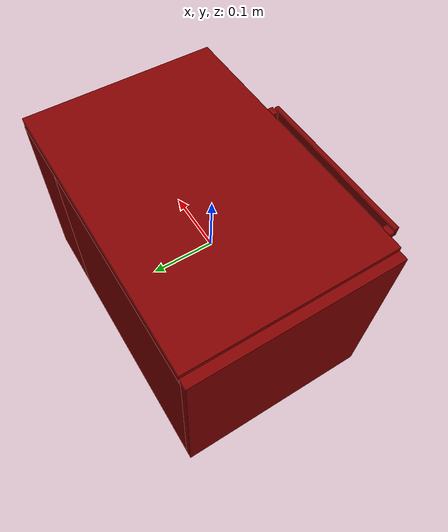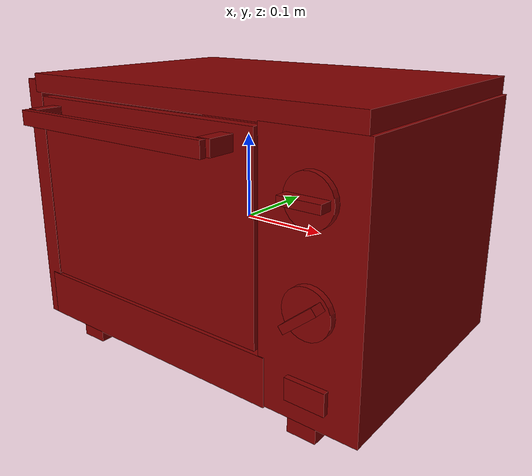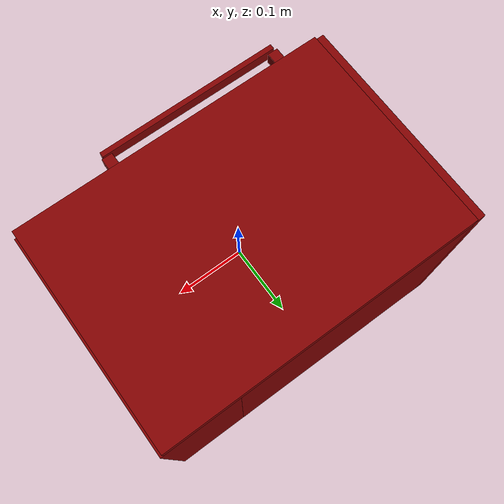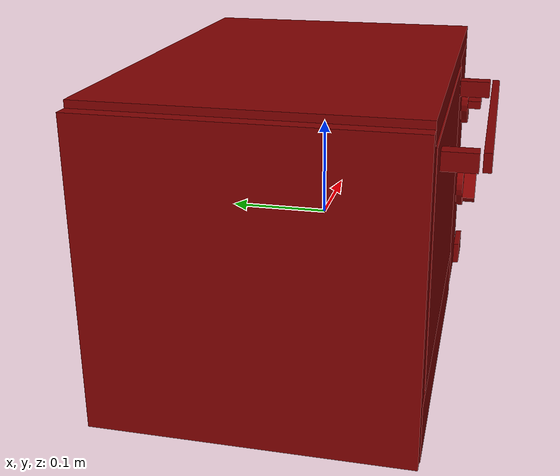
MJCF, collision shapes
<?xml version='1.0' encoding='UTF-8'?>
<mujoco model="model">
  <option timestep="0.002" gravity="0.0 0.0 -9.81"/>
  <compiler angle="radian"/>
  <asset>
    <mesh file="visuals/door.obj" name="door_vis"/>
    <mesh file="visuals/knob_temp.obj" name="knob_temp_vis"/>
    <mesh file="visuals/knob_time.obj" name="knob_time_vis"/>
    <mesh file="visuals/rack0.obj" name="rack0_vis"/>
    <mesh file="visuals/rack1.obj" name="rack1_vis"/>
    <mesh file="visuals/Body001.obj" name="Body001_vis"/>
    <mesh file="visuals/Button001.obj" name="Button001_vis"/>
    <mesh file="visuals/window.obj" name="window_vis"/>
    <texture file="visuals/T_BC001.png" name="Body001_material" type="2d"/>
    <material name="Body001_material" rgba="1 1 1 1.0" texture="Body001_material" shininess="0.1" specular="4"/>
    <texture file="visuals/T_BC001.png" name="door_material" type="2d"/>
    <material name="door_material" rgba="1 1 1 1.0" texture="door_material" shininess="0.1" specular="4"/>
    <material name="window_material" rgba="0.027718495577573776 0.027718495577573776 0.027718495577573776 0.8508064150810242" shininess="0.5" specular="0.3103448502657381"/>
    <texture file="visuals/T_BC001.png" name="knob_temp_material" type="2d"/>
    <material name="knob_temp_material" rgba="1 1 1 1.0" texture="knob_temp_material" shininess="0.1" specular="4"/>
    <texture file="visuals/T_BC001.png" name="knob_time_material" type="2d"/>
    <material name="knob_time_material" rgba="1 1 1 1.0" texture="knob_time_material" shininess="0.1" specular="4"/>
    <texture file="visuals/T_BC001.png" name="rack0_material" type="2d"/>
    <material name="rack0_material" rgba="1 1 1 1.0" texture="rack0_material" shininess="0.1" specular="4"/>
    <texture file="visuals/T_BC001.png" name="rack1_material" type="2d"/>
    <material name="rack1_material" rgba="1 1 1 1.0" texture="rack1_material" shininess="0.1" specular="4"/>
    <texture file="visuals/T_BC001.png" name="Button001_material" type="2d"/>
    <material name="Button001_material" rgba="1 1 1 1.0" texture="Button001_material" shininess="0.1" specular="4"/>
  </asset>
  <default>
    <default class="visual">
      <geom conaffinity="0" contype="0" group="1" type="mesh"/>
    </default>
    <default class="collision">
      <geom group="0" rgba="0.5 0 0 0.5"/>
    </default>
    <default class="spawn">
      <geom group="0" rgba="1 1 1 0.5" contype="0" conaffinity="0"/>
      <site group="0" rgba="1 1 1 0.5"/>
    </default>
    <default class="region">
      <geom group="1" conaffinity="0" contype="0" rgba="0 1 0 0"/>
    </default>
  </default>
  <worldbody>
    <body>
      <body name="object">
        <geom mesh="Body001_vis" type="mesh" solimp="0.998 0.998 0.001" solref="0.001 1" friction="0.95 0.3 0.1" class="visual" material="Body001_material"/>
        <geom class="collision" type="box" pos="-0.21877223253250122 0.02322467789053917 0.007634885609149933" size="0.01202850416302681 0.15374377369880676 0.15099817514419556" quat="1.0 0.0 0.0 0.0"/>
        <geom class="collision" type="box" pos="0.004826840478926897 0.02322467789053917 0.15505971014499664" size="0.2213992029428482 0.15374384820461273 0.01083868183195591" quat="1.0 0.0 0.0 0.0"/>
        <geom class="collision" type="box" pos="0.17352145910263062 0.02322467789053917 0.002373405732214451" size="0.05724387615919113 0.1537439227104187 0.14335086941719055" quat="1.0 0.0 0.0 0.0"/>
        <geom class="collision" type="box" pos="-0.047959938645362854 0.158494770526886 0.0018804371356964111" size="0.1712847352027893 0.018475137650966644 0.1438439041376114" quat="1.0 0.0 0.0 0.0"/>
        <geom class="collision" type="box" pos="-0.047959938645362854 0.004568807780742645 -0.11468327790498734" size="0.17128480970859528 0.1358461230993271 0.028275391086935997" quat="1.0 0.0 0.0 0.0"/>
        <geom class="collision" type="box" pos="-0.04832351580262184 0.030500903725624084 0.1415063440799713" size="0.1195424348115921 0.1100500300526619 0.0033256211318075657" quat="1.0 0.0 0.0 0.0"/>
        <geom class="collision" type="box" pos="0.09545688331127167 0.02468828484416008 0.07972432672977448" size="0.001964716473594308 0.09458975493907928 0.001897080335766077" quat="1.0 0.0 0.0 0.0"/>
        <geom class="collision" type="box" pos="0.09545688331127167 0.006822250783443451 0.07002994418144226" size="0.0019647174049168825 0.1124558374285698 0.0018970812670886517" quat="1.0 0.0 0.0 0.0"/>
        <geom class="collision" type="box" pos="0.10748392343521118 -0.11092094331979752 0.07002994418144226" size="0.0015673907473683357 0.0096534239128232 0.0018970880191773176" quat="0.6907860636711121 0.0 -0.0 -0.7230591773986816"/>
        <geom class="collision" type="box" pos="0.10748392343521118 -0.11092094331979752 0.08554912358522415" size="0.0015673907473683357 0.0096534239128232 0.0018970880191773176" quat="0.6907860636711121 0.0 -0.0 -0.7230591773986816"/>
        <geom class="collision" type="box" pos="0.09545688331127167 -0.08733263611793518 0.08374722301959991" size="0.0019647241570055485 0.01828564703464508 0.001982876332476735" quat="0.9939031600952148 -0.11025635153055191 -0.0 0.0"/>
        <geom class="collision" type="box" pos="0.10748392343521118 0.12902984023094177 0.07885001599788666" size="0.0015673907473683357 0.0096534239128232 0.0018970880191773176" quat="0.6907861828804016 0.0 0.0 0.7230591177940369"/>
        <geom class="collision" type="box" pos="0.10748392343521118 0.12708550691604614 0.07002994418144226" size="0.0015673907473683357 0.0096534239128232 0.0018970880191773176" quat="0.6907861828804016 0.0 0.0 0.7230591177940369"/>
        <geom class="collision" type="box" pos="0.10748392343521118 0.12708550691604614 -0.016184449195861816" size="0.0015673907473683357 0.0096534239128232 0.0018970880191773176" quat="0.6907861828804016 0.0 0.0 0.7230591177940369"/>
        <geom class="collision" type="box" pos="0.10748392343521118 0.12902984023094177 -0.00780215859413147" size="0.0015673907473683357 0.0096534239128232 0.0018970880191773176" quat="0.6907861828804016 0.0 0.0 0.7230591177940369"/>
        <geom class="collision" type="box" pos="0.09545688331127167 -0.08733263611793518 -0.002904951572418213" size="0.0019647241570055485 0.01828564703464508 0.001982876332476735" quat="0.9939031600952148 -0.11025635153055191 -0.0 0.0"/>
        <geom class="collision" type="box" pos="0.10748392343521118 -0.11092094331979752 -0.0011030510067939758" size="0.0015673907473683357 0.0096534239128232 0.0018970880191773176" quat="0.6907860636711121 0.0 -0.0 -0.7230591773986816"/>
        <geom class="collision" type="box" pos="0.10748392343521118 -0.11092094331979752 -0.016184449195861816" size="0.0015673907473683357 0.0096534239128232 0.0018970880191773176" quat="0.6907860636711121 0.0 -0.0 -0.7230591773986816"/>
        <geom class="collision" type="box" pos="0.09545688331127167 0.006822250783443451 -0.016184449195861816" size="0.001964718336239457 0.11245589703321457 0.0018970820819959044" quat="1.0 0.0 0.0 0.0"/>
        <geom class="collision" type="box" pos="0.09545688331127167 0.02468828484416008 -0.006927847862243652" size="0.0019647192675620317 0.09458992630243301 0.001897083013318479" quat="1.0 0.0 0.0 0.0"/>
        <geom class="collision" type="box" pos="-0.18817514181137085 0.024287831038236618 -0.006927848793566227" size="0.0019647199660539627 0.09458998590707779 0.0018970839446410537" quat="1.0 0.0 0.0 0.0"/>
        <geom class="collision" type="box" pos="-0.18817514181137085 0.006421797908842564 -0.016184449195861816" size="0.0019647208973765373 0.1124560683965683 0.0018970847595483065" quat="1.0 0.0 0.0 0.0"/>
        <geom class="collision" type="box" pos="-0.20020218193531036 -0.11132140457630157 -0.016184449195861816" size="0.0015673907473683357 0.0096534239128232 0.0018970880191773176" quat="0.6907861828804016 0.0 0.0 0.7230591177940369"/>
        <geom class="collision" type="box" pos="-0.20020218193531036 -0.11132140457630157 -0.0011030519381165504" size="0.0015673907473683357 0.0096534239128232 0.0018970880191773176" quat="0.6907861828804016 0.0 0.0 0.7230591177940369"/>
        <geom class="collision" type="box" pos="-0.18817514181137085 -0.08773308992385864 -0.0029049525037407875" size="0.0019647241570055485 0.01828564703464508 0.001982876332476735" quat="0.9939031600952148 -0.11025635153055191 -0.0 0.0"/>
        <geom class="collision" type="box" pos="-0.20020218193531036 0.1286293864250183 -0.007802159525454044" size="0.0015673907473683357 0.0096534239128232 0.0018970880191773176" quat="0.6907861828804016 0.0 -0.0 -0.7230591177940369"/>
        <geom class="collision" type="box" pos="-0.20020218193531036 0.12668505311012268 -0.016184449195861816" size="0.0015673907473683357 0.0096534239128232 0.0018970880191773176" quat="0.6907861828804016 0.0 -0.0 -0.7230591177940369"/>
        <geom class="collision" type="box" pos="-0.20020218193531036 0.12668505311012268 0.07002994418144226" size="0.0015673907473683357 0.0096534239128232 0.0018970880191773176" quat="0.6907861828804016 0.0 -0.0 -0.7230591177940369"/>
        <geom class="collision" type="box" pos="-0.20020218193531036 0.1286293864250183 0.07885001599788666" size="0.0015673907473683357 0.0096534239128232 0.0018970880191773176" quat="0.6907861828804016 0.0 -0.0 -0.7230591177940369"/>
        <geom class="collision" type="box" pos="-0.18817514181137085 -0.08773308992385864 0.08374722301959991" size="0.0019647241570055485 0.01828564703464508 0.001982876332476735" quat="0.9939031600952148 -0.11025635153055191 -0.0 0.0"/>
        <geom class="collision" type="box" pos="-0.20020218193531036 -0.11132140457630157 0.08554912358522415" size="0.0015673907473683357 0.0096534239128232 0.0018970880191773176" quat="0.6907861828804016 0.0 0.0 0.7230591177940369"/>
        <geom class="collision" type="box" pos="-0.20020218193531036 -0.11132140457630157 0.07002994418144226" size="0.0015673907473683357 0.0096534239128232 0.0018970880191773176" quat="0.6907861828804016 0.0 0.0 0.7230591177940369"/>
        <geom class="collision" type="box" pos="-0.18817514181137085 0.006421796977519989 0.07002994418144226" size="0.001964721828699112 0.11245612800121307 0.001897085690870881" quat="1.0 0.0 0.0 0.0"/>
        <geom class="collision" type="box" pos="-0.18817514181137085 0.024287831038236618 0.07972432672977448" size="0.0019647227600216866 0.09459014981985092 0.0018970865057781339" quat="1.0 0.0 0.0 0.0"/>
        <geom class="collision" type="box" pos="-0.15941759943962097 0.01840236410498619 -0.15419569611549377" size="0.01678498461842537 0.13938933610916138 0.011702729389071465" quat="1.0 0.0 0.0 0.0"/>
        <geom class="collision" type="box" pos="0.1624724268913269 0.01840236410498619 -0.15419569611549377" size="0.01678498648107052 0.13938935101032257 0.011702731251716614" quat="1.0 0.0 0.0 0.0"/>
        <body name="door">
          <joint axis="1.0 0.0 0.0" pos="-0.04910198971629143 -0.1300266832113266 -0.09429144859313965" limited="true" name="door_joint" range="0.0 1.3707963267948966" type="hinge" damping="1" frictionloss="1" armature=".01" stiffness="0.05"/>
          <geom mesh="door_vis" type="mesh" solimp="0.998 0.998 0.001" solref="0.001 1" friction="0.95 0.3 0.1" class="visual" material="door_material"/>
          <geom class="collision" type="box" pos="-0.04572342708706856 -0.12485657632350922 0.02870841510593891" size="0.15778911113739014 0.006507790647447109 0.11144860088825226" quat="1.0 0.0 0.0 0.0" name="door_main"/>
          <geom class="collision" type="box" pos="-0.046276964247226715 -0.17030739784240723 0.12317418307065964" size="0.13382969796657562 0.00368265132419765 0.008488301187753677" quat="1.0 0.0 0.0 0.0" name="door_handle_main"/>
          <geom class="collision" type="box" pos="0.08291781693696976 -0.148769348859787 0.12317418307065964" size="0.007553317584097385 0.015613029710948467 0.008488301187753677" quat="1.0 0.0 0.0 0.0"/>
          <geom class="collision" type="box" pos="-0.17560052871704102 -0.14804984629154205 0.12317418307065964" size="0.007553317584097385 0.015613029710948467 0.008488301187753677" quat="1.0 0.0 0.0 0.0"/>
          <body name="window">
            <geom mesh="window_vis" type="mesh" solimp="0.998 0.998 0.001" solref="0.001 1" friction="0.95 0.3 0.1" class="visual" material="window_material"/>
            <geom class="collision" type="box" pos="-0.04783531650900841 -0.12328512966632843 0.015823151916265488" size="0.15466490387916565 0.0022350559011101723 0.0910041555762291" quat="1.0 0.0 0.0 0.0"/>
          </body>
        </body>
        <body name="knob_temp">
          <joint axis="0.0 1.0 0.0" pos="0.1768685132265091 -0.142544686794281 0.08579237759113312" limited="true" name="knob_temp_joint" range="0.0 5.410520681182422" type="hinge" damping="0.05" armature="1" frictionloss="0.75"/>
          <geom mesh="knob_temp_vis" type="mesh" solimp="0.998 0.998 0.001" solref="0.001 1" friction="0.95 0.3 0.1" class="visual" material="knob_temp_material"/>
          <geom class="collision" type="cylinder" pos="0.1769108772277832 -0.13558289408683777 0.08579499274492264" size="0.026501605287194252 0.003774190554395318" quat="0.7071067094802856 0.7071068286895752 0.0 0.0" friction="100 0.5 0.01"/>
          <geom class="collision" type="box" pos="0.1767369508743286 -0.14637765288352966 0.08617718517780304" size="0.022439634427428246 0.007598815020173788 0.004390833433717489" quat="1.0 0.0 0.0 0.0" name="knob_temp_main" friction="100 0.5 0.01"/>
        </body>
        <body name="knob_time">
          <joint axis="0.0 1.0 0.0" pos="0.1768685132265091 -0.1425272822380066 -0.019056694582104683" limited="true" name="knob_time_joint" range="0.0 5.410520681182422" type="hinge" damping="0.05" frictionloss="0.75" armature="1"/>
          <geom mesh="knob_time_vis" type="mesh" solimp="0.998 0.998 0.001" solref="0.001 1" friction="0.95 0.3 0.1" class="visual" material="knob_time_material"/>
          <geom class="collision" type="box" pos="0.17749057710170746 -0.14637765288352966 -0.019612757489085197" size="0.022439634427428246 0.007598815020173788 0.004390833433717489" quat="0.9408627152442932 0.0 -0.3387880027294159 0.0" name="knob_time_main" friction="100 0.5 0.01"/>
          <geom class="collision" type="cylinder" pos="0.1769108772277832 -0.13558289408683777 -0.018895963206887245" size="0.026501605287194252 0.003774190554395318" quat="0.7071067094802856 0.7071068286895752 0.0 0.0" friction="100 0.5 0.01"/>
        </body>
        <body name="rack0">
          <geom class="region" name="reg_rack0" type="box" pos="-0.046543512493371964 0.027423713356256485 0.02308021578937769" size="0.09835199436545372 0.06885089150071144 0.037512370221316815"/>
          <joint axis="0.0 -1.0 0.0" pos="-0.04792361333966255 0.02722150646150112 -0.016832485795021057" limited="true" name="rack0_joint" range="0.0 0.2" type="slide" damping="1" frictionloss="1" armature=".01" stiffness="0.05"/>
          <geom mesh="rack0_vis" type="mesh" solimp="0.998 0.998 0.001" solref="0.001 1" friction="0.95 0.3 0.1" class="visual" material="rack0_material"/>
          <geom class="collision" type="box" pos="0.06978611648082733 0.026954464614391327 -0.017307212576270103" size="0.01099353190511465 0.08887818455696106 0.0013037192402407527" quat="0.9949419498443604 0.0 -0.10045179724693298 0.0"/>
          <geom class="collision" type="box" pos="-0.16449613869190216 0.026954464614391327 -0.017307212576270103" size="0.01099353190511465 0.08887818455696106 0.0013037192402407527" quat="0.9949419498443604 0.0 0.10045181214809418 0.0"/>
          <geom class="collision" type="box" pos="-0.18754267692565918 0.026954464614391327 -0.01290157251060009" size="0.010993530973792076 0.08887818455696106 0.0013037191238254309" quat="1.0 0.0 0.0 0.0"/>
          <geom class="collision" type="box" pos="0.091501384973526 0.026954464614391327 -0.01290157251060009" size="0.010993530973792076 0.08887818455696106 0.0013037191238254309" quat="1.0 0.0 0.0 0.0"/>
          <geom class="collision" type="box" pos="-0.048293229192495346 0.12915202975273132 -0.01290157251060009" size="0.15078814327716827 0.013202767819166183 0.0013037191238254309" quat="1.0 0.0 0.0 0.0"/>
          <geom class="collision" type="box" pos="-0.048293229192495346 -0.07483863830566406 -0.01290157251060009" size="0.15078814327716827 0.013202767819166183 0.0013037191238254309" quat="1.0 0.0 0.0 0.0"/>
          <geom class="collision" type="box" pos="-0.04357485845685005 0.027002807706594467 -0.020256785675883293" size="0.10748109966516495 0.07658181339502335 0.0013037191238254309" quat="1.0 0.0 0.0 0.0"/>
        </body>
        <body name="rack1">
          <geom class="region" name="reg_rack1" type="box" pos="-0.046543512493371964 0.027423713356256485 0.10278954356908798" size="0.09835199436545372 0.06885089150071144 0.03129867261648178"/>
          <joint axis="0.0 -1.0 0.0" pos="-0.04792361333966255 0.02722150646150112 0.06941118836402893" limited="true" name="rack1_joint" range="0.0 0.2" type="slide" damping="1" frictionloss="1" armature=".01" stiffness="0.05"/>
          <geom mesh="rack1_vis" type="mesh" solimp="0.998 0.998 0.001" solref="0.001 1" friction="0.95 0.3 0.1" class="visual" material="rack1_material"/>
          <geom class="collision" type="box" pos="-0.04357485845685005 0.027002807706594467 0.06609886139631271" size="0.10748109966516495 0.07658181339502335 0.0013037191238254309" quat="1.0 0.0 0.0 0.0"/>
          <geom class="collision" type="box" pos="-0.048293229192495346 -0.07483863830566406 0.07345407456159592" size="0.15078814327716827 0.013202767819166183 0.0013037191238254309" quat="1.0 0.0 0.0 0.0"/>
          <geom class="collision" type="box" pos="-0.048293229192495346 0.12915202975273132 0.07345407456159592" size="0.15078814327716827 0.013202767819166183 0.0013037191238254309" quat="1.0 0.0 0.0 0.0"/>
          <geom class="collision" type="box" pos="0.091501384973526 0.026954464614391327 0.07345407456159592" size="0.010993530973792076 0.08887818455696106 0.0013037191238254309" quat="1.0 0.0 0.0 0.0"/>
          <geom class="collision" type="box" pos="-0.18754267692565918 0.026954464614391327 0.07345407456159592" size="0.010993530973792076 0.08887818455696106 0.0013037191238254309" quat="1.0 0.0 0.0 0.0"/>
          <geom class="collision" type="box" pos="-0.16449613869190216 0.026954464614391327 0.0690484344959259" size="0.01099353190511465 0.08887818455696106 0.0013037192402407527" quat="0.9949419498443604 0.0 0.10045181214809418 0.0"/>
          <geom class="collision" type="box" pos="0.06978611648082733 0.026954464614391327 0.0690484344959259" size="0.01099353190511465 0.08887818455696106 0.0013037192402407527" quat="0.9949419498443604 0.0 -0.10045179724693298 0.0"/>
        </body>
        <body name="Button001">
          <joint axis="0.0 1.0 0.0" pos="0.17668302357196808 -0.13461464643478394 -0.10286121815443039" limited="true" name="Button001_joint" range="0.0 0.002" type="slide" damping="1" frictionloss="1" armature=".01" stiffness="4" springref="0"/>
          <geom mesh="Button001_vis" type="mesh" solimp="0.998 0.998 0.001" solref="0.001 1" friction="0.95 0.3 0.1" class="visual" material="Button001_material"/>
          <geom class="collision" type="box" pos="0.17669694125652313 -0.13604387640953064 -0.10348032414913177" size="0.022439634427428246 0.003150008153170347 0.012216387316584587" quat="1.0 0.0 0.0 0.0"/>
        </body>
        <geom class="region" name="reg_int" type="box" pos="-0.04737980663776398 0.008529335260391235 0.026130225509405136" size="0.1477413306236267 0.1263337562084198 0.10795799067616463"/>
        <geom class="region" name="reg_main" type="box" pos="3.725290298461914e-09 0.022802866995334625 0.0" size="0.23180085217952728 0.15516723489761353 0.1668984273672104"/>
      </body>
    </body>
  </worldbody>
  <actuator>
    <motor name="door_joint_actuator" joint="door_joint" gear="50"/>
    <motor name="knob_temp_joint_actuator" joint="knob_temp_joint" gear="50"/>
    <motor name="knob_time_joint_actuator" joint="knob_time_joint" gear="50"/>
    <motor name="rack0_joint_actuator" joint="rack0_joint" gear="50"/>
    <motor name="rack1_joint_actuator" joint="rack1_joint" gear="50"/>
    <motor name="Button001_joint_actuator" joint="Button001_joint" gear="0.5"/>
  </actuator>
</mujoco>
